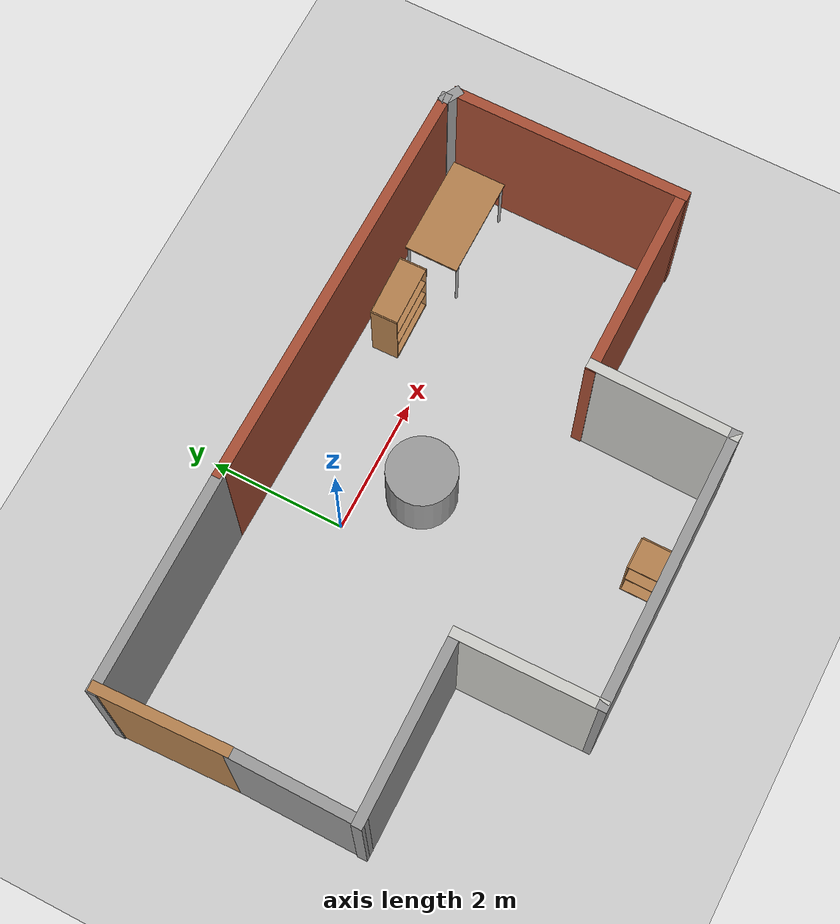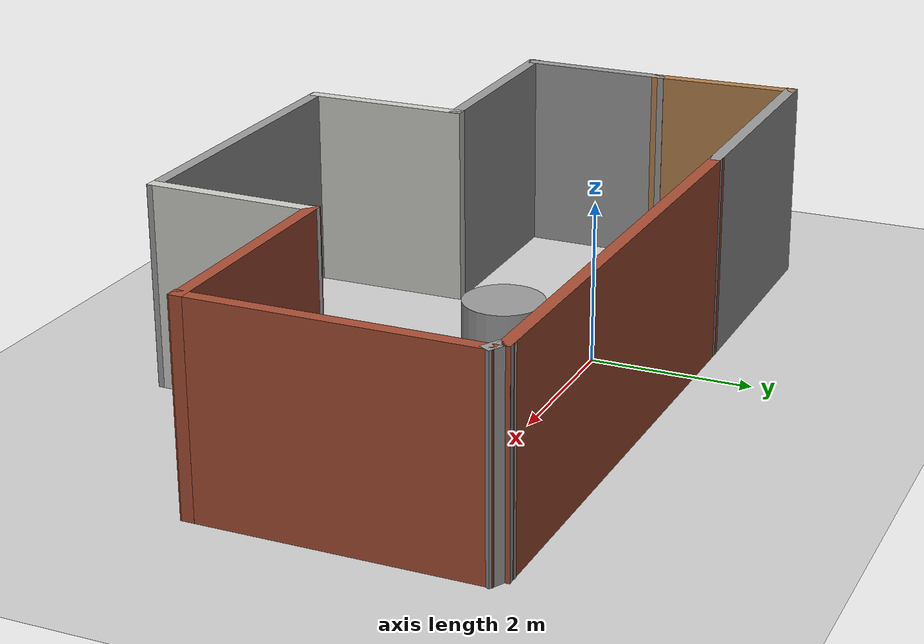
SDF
<sdf version="1.7">
 <world name="default">
  <light name="sun" type="directional">
   <pose>0 0 10 0 -0 0</pose>
   <diffuse>0.8 0.8 0.8 1</diffuse>
   <specular>0.2 0.2 0.2 1</specular>
   <attenuation>
    <range>1000</range>
    <constant>0.9</constant>
    <linear>0.01</linear>
    <quadratic>0.001</quadratic>
   </attenuation>
   <direction>-0.5 0.1 -0.9</direction>
   <spot><inner_angle>0</inner_angle><outer_angle>0</outer_angle><falloff>0</falloff></spot>
  </light>
  <model name="ground_plane">
   <static>1</static>
   <link name="link">
    <collision name="collision">
     <geometry><plane><normal>0 0 1</normal><size>100 100</size></plane></geometry>
     <surface><friction><ode><mu>100</mu><mu2>50</mu2></ode></friction></surface>
    </collision>
    <visual name="visual">
     <cast_shadows>0</cast_shadows>
     <geometry><plane><normal>0 0 1</normal><size>100 100</size></plane></geometry>
     <material>
      <script><uri>file://media/materials/scripts/gazebo.material</uri><name>Gazebo/Grey</name></script>
     </material>
    </visual>
   </link>
  </model>
  <gravity>0 0 -9.8</gravity>
  <magnetic_field>6e-06 2.3e-05 -4.2e-05</magnetic_field>
  <atmosphere type="adiabatic"/>
  <physics type="ode">
   <max_step_size>0.001</max_step_size>
   <real_time_factor>1</real_time_factor>
   <real_time_update_rate>1000</real_time_update_rate>
  </physics>
  <scene><ambient>0.4 0.4 0.4 1</ambient><background>0.7 0.7 0.7 1</background><shadows>1</shadows></scene>
  <audio><device>default</device></audio>
  <spherical_coordinates>
   <surface_model>EARTH_WGS84</surface_model>
   <latitude_deg>0</latitude_deg>
   <longitude_deg>0</longitude_deg>
   <elevation>0</elevation>
   <heading_deg>0</heading_deg>
  </spherical_coordinates>
  <model name="warehouse">
   <pose>0.832713 -1.54674 0 0 -0 0</pose>
   <link name="Wall_0">
    <collision name="Wall_0_Collision">
     <geometry><box><size>2.69779 0.15 2.5</size></box></geometry>
     <pose>0 0 1.25 0 -0 0</pose>
    </collision>
    <visual name="Wall_0_Visual">
     <pose>0 0 1.25 0 -0 0</pose>
     <geometry><box><size>2.69779 0.15 2.5</size></box></geometry>
     <material>
      <script><uri>file://media/materials/scripts/gazebo.material</uri><name>Gazebo/Grey</name></script>
      <ambient>0 0 0 1</ambient>
     </material>
     <meta><layer>0</layer></meta>
    </visual>
    <pose>-3.34665 -0.808766 0 0 -0 0.00776</pose>
   </link>
   <link name="Wall_11">
    <collision name="Wall_11_Collision">
     <geometry><box><size>4.04089 0.15 2.5</size></box></geometry>
     <pose>0 0 1.25 0 -0 0</pose>
    </collision>
    <visual name="Wall_11_Visual">
     <pose>0 0 1.25 0 -0 0</pose>
     <geometry><box><size>4.04089 0.15 2.5</size></box></geometry>
     <material>
      <script><uri>file://media/materials/scripts/gazebo.material</uri><name>Gazebo/Grey</name></script>
      <ambient>0 0 0 1</ambient>
     </material>
     <meta><layer>0</layer></meta>
    </visual>
    <pose>-0.09695 -2.76772 0 0 -0 0.003909</pose>
   </link>
   <link name="Wall_12">
    <collision name="Wall_12_Collision">
     <geometry><box><size>2.15738 0.15 2.5</size></box></geometry>
     <pose>0 0 1.25 0 -0 0</pose>
    </collision>
    <visual name="Wall_12_Visual">
     <pose>0 0 1.25 0 -0 0</pose>
     <geometry><box><size>2.15738 0.15 2.5</size></box></geometry>
     <material>
      <script><uri>file://media/materials/scripts/gazebo.material</uri><name>Gazebo/CeilingTiled</name></script>
      <ambient>0 0 0 1</ambient>
     </material>
     <meta><layer>0</layer></meta>
    </visual>
    <pose>1.87129 -1.75668 0 0 -0 1.54807</pose>
   </link>
   <link name="Wall_14">
    <collision name="Wall_14_Collision">
     <geometry><box><size>2.91101 0.15 2.5</size></box></geometry>
     <pose>0 0 1.25 0 -0 0</pose>
    </collision>
    <visual name="Wall_14_Visual">
     <pose>0 0 1.25 0 -0 0</pose>
     <geometry><box><size>2.91101 0.15 2.5</size></box></geometry>
     <material>
      <script><uri>file://media/materials/scripts/gazebo.material</uri><name>Gazebo/Bricks</name></script>
      <ambient>0 0 0 1</ambient>
     </material>
     <meta><layer>0</layer></meta>
    </visual>
    <pose>3.25921 -0.753254 0 0 -0 0</pose>
   </link>
   <link name="Wall_16">
    <collision name="Wall_16_Collision">
     <geometry><box><size>3.5 0.15 2.5</size></box></geometry>
     <pose>0 0 1.25 0 -0 0</pose>
    </collision>
    <visual name="Wall_16_Visual">
     <pose>0 0 1.25 0 -0 0</pose>
     <geometry><box><size>3.5 0.15 2.5</size></box></geometry>
     <material>
      <script><uri>file://media/materials/scripts/gazebo.material</uri><name>Gazebo/Bricks</name></script>
      <ambient>0 0 0 1</ambient>
     </material>
     <meta><layer>0</layer></meta>
    </visual>
    <pose>4.63953 0.906538 0 0 -0 1.5708</pose>
   </link>
   <link name="Wall_18">
    <collision name="Wall_18_Collision">
     <geometry><box><size>6.21052 0.15 2.5</size></box></geometry>
     <pose>0 0 1.25 0 -0 0</pose>
    </collision>
    <visual name="Wall_18_Visual">
     <pose>0 0 1.25 0 -0 0</pose>
     <geometry><box><size>6.21052 0.15 2.5</size></box></geometry>
     <material>
      <script><uri>file://media/materials/scripts/gazebo.material</uri><name>Gazebo/Bricks</name></script>
      <ambient>0 0 0 1</ambient>
     </material>
     <meta><layer>0</layer></meta>
    </visual>
    <pose>1.46389 2.73666 0 0 -0 -0.012548</pose>
   </link>
   <link name="Wall_2">
    <collision name="Wall_2_Collision">
     <geometry><box><size>1.98059 0.15 2.5</size></box></geometry>
     <pose>0 0 1.25 0 -0 0</pose>
    </collision>
    <visual name="Wall_2_Visual">
     <pose>0 0 1.25 0 -0 0</pose>
     <geometry><box><size>1.98059 0.15 2.5</size></box></geometry>
     <material>
      <script><uri>file://media/materials/scripts/gazebo.material</uri><name>Gazebo/Grey</name></script>
      <ambient>0 0 0 1</ambient>
     </material>
     <meta><layer>0</layer></meta>
    </visual>
    <pose>-4.5977 0.096359 0 0 -0 1.56249</pose>
   </link>
   <link name="Wall_20">
    <collision name="Wall_20_Collision">
     <geometry><box><size>0.15 0.15 2.5</size></box></geometry>
     <pose>0 0 1.25 0 -0 0</pose>
    </collision>
    <visual name="Wall_20_Visual">
     <pose>0 0 1.25 0 -0 0</pose>
     <geometry><box><size>0.15 0.15 2.5</size></box></geometry>
     <material>
      <script><uri>file://media/materials/scripts/gazebo.material</uri><name>Gazebo/Grey</name></script>
      <ambient>1 1 1 1</ambient>
     </material>
     <meta><layer>0</layer></meta>
    </visual>
    <pose>4.4939 2.69863 0 0 -0 0</pose>
   </link>
   <link name="Wall_21">
    <collision name="Wall_21_Collision">
     <geometry><box><size>0.332706 0.15 2.5</size></box></geometry>
     <pose>0 0 1.25 0 -0 0</pose>
    </collision>
    <visual name="Wall_21_Visual">
     <pose>0 0 1.25 0 -0 0</pose>
     <geometry><box><size>0.332706 0.15 2.5</size></box></geometry>
     <material>
      <script><uri>file://media/materials/scripts/gazebo.material</uri><name>Gazebo/Grey</name></script>
      <ambient>0 0 0 1</ambient>
     </material>
     <meta><layer>0</layer></meta>
    </visual>
    <pose>4.55911 2.64009 0 0 -0 -0.49431</pose>
   </link>
   <link name="Wall_4">
    <collision name="Wall_4_Collision">
     <geometry><box><size>1.91436 0.15 2.5</size></box></geometry>
     <pose>0 0 1.25 0 -0 0</pose>
    </collision>
    <visual name="Wall_4_Visual">
     <pose>0 0 1.25 0 -0 0</pose>
     <geometry><box><size>1.91436 0.15 2.5</size></box></geometry>
     <material>
      <script><uri>file://media/materials/scripts/gazebo.material</uri><name>Gazebo/Wood</name></script>
      <ambient>0 0 0 1</ambient>
     </material>
     <meta><layer>0</layer></meta>
    </visual>
    <pose>-4.62051 1.87782 0 0 -0 1.60528</pose>
   </link>
   <link name="Wall_5">
    <collision name="Wall_5_Collision">
     <geometry><box><size>3.25 0.15 2.5</size></box></geometry>
     <pose>0 0 1.25 0 -0 0</pose>
    </collision>
    <visual name="Wall_5_Visual">
     <pose>0 0 1.25 0 -0 0</pose>
     <geometry><box><size>3.25 0.15 2.5</size></box></geometry>
     <material>
      <script><uri>file://media/materials/scripts/gazebo.material</uri><name>Gazebo/Grey</name></script>
      <ambient>0 0 0 1</ambient>
     </material>
     <meta><layer>0</layer></meta>
    </visual>
    <pose>-3.11613 2.77468 0 0 -0 0</pose>
   </link>
   <link name="Wall_7">
    <collision name="Wall_7_Collision">
     <geometry><box><size>2.11176 0.15 2.5</size></box></geometry>
     <pose>0 0 1.25 0 -0 0</pose>
    </collision>
    <visual name="Wall_7_Visual">
     <pose>0 0 1.25 0 -0 0</pose>
     <geometry><box><size>2.11176 0.15 2.5</size></box></geometry>
     <material>
      <script><uri>file://media/materials/scripts/gazebo.material</uri><name>Gazebo/CeilingTiled</name></script>
      <ambient>0 0 0 1</ambient>
     </material>
     <meta><layer>0</layer></meta>
    </visual>
    <pose>-2.04998 -1.7795 0 0 -0 -1.56304</pose>
   </link>
   <static>1</static>
  </model>
  <model name="table">
   <static>1</static>
   <link name="link">
    <collision name="surface">
     <pose>0 0 1 0 -0 0</pose>
     <geometry><box><size>1.5 0.8 0.03</size></box></geometry>
     <surface><friction><ode><mu>0.6</mu><mu2>0.6</mu2></ode></friction></surface>
    </collision>
    <visual name="visual1">
     <pose>0 0 1 0 -0 0</pose>
     <geometry><box><size>1.5 0.8 0.03</size></box></geometry>
     <material>
      <script><uri>file://media/materials/scripts/gazebo.material</uri><name>Gazebo/Wood</name></script>
     </material>
    </visual>
    <collision name="front_left_leg">
     <pose>0.68 0.38 0.5 0 -0 0</pose>
     <geometry><cylinder><radius>0.02</radius><length>1</length></cylinder></geometry>
    </collision>
    <visual name="front_left_leg">
     <pose>0.68 0.38 0.5 0 -0 0</pose>
     <geometry><cylinder><radius>0.02</radius><length>1</length></cylinder></geometry>
     <material>
      <script><uri>file://media/materials/scripts/gazebo.material</uri><name>Gazebo/Grey</name></script>
     </material>
    </visual>
    <collision name="front_right_leg">
     <pose>0.68 -0.38 0.5 0 -0 0</pose>
     <geometry><cylinder><radius>0.02</radius><length>1</length></cylinder></geometry>
    </collision>
    <visual name="front_right_leg">
     <pose>0.68 -0.38 0.5 0 -0 0</pose>
     <geometry><cylinder><radius>0.02</radius><length>1</length></cylinder></geometry>
     <material>
      <script><uri>file://media/materials/scripts/gazebo.material</uri><name>Gazebo/Grey</name></script>
     </material>
    </visual>
    <collision name="back_right_leg">
     <pose>-0.68 -0.38 0.5 0 -0 0</pose>
     <geometry><cylinder><radius>0.02</radius><length>1</length></cylinder></geometry>
    </collision>
    <visual name="back_right_leg">
     <pose>-0.68 -0.38 0.5 0 -0 0</pose>
     <geometry><cylinder><radius>0.02</radius><length>1</length></cylinder></geometry>
     <material>
      <script><uri>file://media/materials/scripts/gazebo.material</uri><name>Gazebo/Grey</name></script>
     </material>
    </visual>
    <collision name="back_left_leg">
     <pose>-0.68 0.38 0.5 0 -0 0</pose>
     <geometry><cylinder><radius>0.02</radius><length>1</length></cylinder></geometry>
    </collision>
    <visual name="back_left_leg">
     <pose>-0.68 0.38 0.5 0 -0 0</pose>
     <geometry><cylinder><radius>0.02</radius><length>1</length></cylinder></geometry>
     <material>
      <script><uri>file://media/materials/scripts/gazebo.material</uri><name>Gazebo/Grey</name></script>
     </material>
    </visual>
   </link>
   <pose>4.49702 0.549812 0 0 -0 0</pose>
  </model>
  <model name="unit_cylinder">
   <pose>0.922535 -0.768564 0.5 0 -0 0</pose>
   <link name="link">
    <inertial>
     <mass>1</mass>
     <inertia><ixx>0.145833</ixx><ixy>0</ixy><ixz>0</ixz><iyy>0.145833</iyy><iyz>0</iyz><izz>0.125</izz></inertia>
    </inertial>
    <collision name="collision">
     <geometry><cylinder><radius>0.5</radius><length>1</length></cylinder></geometry>
    </collision>
    <visual name="visual">
     <geometry><cylinder><radius>0.5</radius><length>1</length></cylinder></geometry>
     <material>
      <script><name>Gazebo/Grey</name><uri>file://media/materials/scripts/gazebo.material</uri></script>
     </material>
    </visual>
   </link>
  </model>
  <model name="bookshelf">
   <static>1</static>
   <link name="link">
    <inertial><mass>1</mass></inertial>
    <collision name="back">
     <pose>0 0.005 0.6 0 -0 0</pose>
     <geometry><box><size>0.9 0.01 1.2</size></box></geometry>
    </collision>
    <visual name="visual1">
     <pose>0 0.005 0.6 0 -0 0</pose>
     <geometry><box><size>0.9 0.01 1.2</size></box></geometry>
     <material>
      <script><uri>file://media/materials/scripts/gazebo.material</uri><name>Gazebo/Wood</name></script>
     </material>
    </visual>
    <collision name="left_side">
     <pose>0.45 -0.195 0.6 0 -0 0</pose>
     <geometry><box><size>0.02 0.4 1.2</size></box></geometry>
    </collision>
    <visual name="visual2">
     <pose>0.45 -0.195 0.6 0 -0 0</pose>
     <geometry><box><size>0.02 0.4 1.2</size></box></geometry>
     <material>
      <script><uri>file://media/materials/scripts/gazebo.material</uri><name>Gazebo/Wood</name></script>
     </material>
    </visual>
    <collision name="right_side">
     <pose>-0.45 -0.195 0.6 0 -0 0</pose>
     <geometry><box><size>0.02 0.4 1.2</size></box></geometry>
    </collision>
    <visual name="visual3">
     <pose>-0.45 -0.195 0.6 0 -0 0</pose>
     <geometry><box><size>0.02 0.4 1.2</size></box></geometry>
     <material>
      <script><uri>file://media/materials/scripts/gazebo.material</uri><name>Gazebo/Wood</name></script>
     </material>
    </visual>
    <collision name="bottom">
     <pose>0 -0.195 0.03 0 -0 0</pose>
     <geometry><box><size>0.88 0.4 0.06</size></box></geometry>
    </collision>
    <visual name="visual4">
     <pose>0 -0.195 0.03 0 -0 0</pose>
     <geometry><box><size>0.88 0.4 0.06</size></box></geometry>
     <material>
      <script><uri>file://media/materials/scripts/gazebo.material</uri><name>Gazebo/Wood</name></script>
     </material>
    </visual>
    <collision name="top">
     <pose>0 -0.195 1.19 0 -0 0</pose>
     <geometry><box><size>0.88 0.4 0.02</size></box></geometry>
    </collision>
    <visual name="visual5">
     <pose>0 -0.195 1.19 0 -0 0</pose>
     <geometry><box><size>0.88 0.4 0.02</size></box></geometry>
     <material>
      <script><uri>file://media/materials/scripts/gazebo.material</uri><name>Gazebo/Wood</name></script>
     </material>
    </visual>
    <collision name="low_shelf">
     <pose>0 -0.195 0.43 0 -0 0</pose>
     <geometry><box><size>0.88 0.4 0.02</size></box></geometry>
    </collision>
    <visual name="visual6">
     <pose>0 -0.195 0.43 0 -0 0</pose>
     <geometry><box><size>0.88 0.4 0.02</size></box></geometry>
     <material>
      <script><uri>file://media/materials/scripts/gazebo.material</uri><name>Gazebo/Wood</name></script>
     </material>
    </visual>
    <collision name="high_shelf">
     <pose>0 -0.195 0.8 0 -0 0</pose>
     <geometry><box><size>0.88 0.4 0.02</size></box></geometry>
    </collision>
    <visual name="visual7">
     <pose>0 -0.195 0.8 0 -0 0</pose>
     <geometry><box><size>0.88 0.4 0.02</size></box></geometry>
     <material>
      <script><uri>file://media/materials/scripts/gazebo.material</uri><name>Gazebo/Wood</name></script>
     </material>
    </visual>
   </link>
   <pose>3.03697 0.879032 -0 0 -0 0.017678</pose>
  </model>
  <model name="cabinet">
   <static>1</static>
   <link name="cabinet_bottom_plate">
    <inertial>
     <pose>0 0 -1 0 -0 0</pose>
     <inertia><ixx>2.05</ixx><ixy>0</ixy><ixz>0</ixz><iyy>2.05</iyy><iyz>0</iyz><izz>2.05</izz></inertia>
     <mass>25</mass>
    </inertial>
    <collision name="cabinet_bottom_plate_geom">
     <pose>0 0 0.01 0 -0 0</pose>
     <geometry><box><size>0.45 0.45 0.02</size></box></geometry>
    </collision>
    <visual name="cabinet_bottom_plate_geom_visual">
     <pose>0 0 0.01 0 -0 0</pose>
     <geometry><box><size>0.45 0.45 0.02</size></box></geometry>
     <material>
      <script><uri>file://media/materials/scripts/gazebo.material</uri><name>Gazebo/Wood</name></script>
     </material>
    </visual>
    <collision name="cabinet_bottom_plate_geom_cabinet_back_plate">
     <pose>0.235 0 0.51 0 -0 0</pose>
     <geometry><box><size>0.02 0.45 1.02</size></box></geometry>
    </collision>
    <visual name="cabinet_bottom_plate_geom_cabinet_back_plate_visual">
     <pose>0.235 0 0.51 0 -0 0</pose>
     <geometry><box><size>0.02 0.45 1.02</size></box></geometry>
     <material>
      <script><uri>file://media/materials/scripts/gazebo.material</uri><name>Gazebo/Wood</name></script>
     </material>
    </visual>
    <collision name="cabinet_bottom_plate_geom_cabinet_left_plate">
     <pose>0 0.235 0.51 0 -0 0</pose>
     <geometry><box><size>0.45 0.02 1.02</size></box></geometry>
    </collision>
    <visual name="cabinet_bottom_plate_geom_cabinet_left_plate_visual">
     <pose>0 0.235 0.51 0 -0 0</pose>
     <geometry><box><size>0.45 0.02 1.02</size></box></geometry>
     <material>
      <script><uri>file://media/materials/scripts/gazebo.material</uri><name>Gazebo/Wood</name></script>
     </material>
    </visual>
    <collision name="cabinet_bottom_plate_geom_cabinet_middle_plate">
     <pose>0 0 0.51 0 -0 0</pose>
     <geometry><box><size>0.45 0.45 0.02</size></box></geometry>
    </collision>
    <visual name="cabinet_bottom_plate_geom_cabinet_middle_plate_visual">
     <pose>0 0 0.51 0 -0 0</pose>
     <geometry><box><size>0.45 0.45 0.02</size></box></geometry>
     <material>
      <script><uri>file://media/materials/scripts/gazebo.material</uri><name>Gazebo/Wood</name></script>
     </material>
    </visual>
    <collision name="cabinet_bottom_plate_geom_cabinet_right_plate">
     <pose>0 -0.235 0.51 0 -0 0</pose>
     <geometry><box><size>0.45 0.02 1.02</size></box></geometry>
    </collision>
    <visual name="cabinet_bottom_plate_geom_cabinet_right_plate_visual">
     <pose>0 -0.235 0.51 0 -0 0</pose>
     <geometry><box><size>0.45 0.02 1.02</size></box></geometry>
     <material>
      <script><uri>file://media/materials/scripts/gazebo.material</uri><name>Gazebo/Wood</name></script>
     </material>
    </visual>
    <collision name="cabinet_bottom_plate_geom_cabinet_top_plate">
     <pose>0 0 1.01 0 -0 0</pose>
     <geometry><box><size>0.45 0.45 0.02</size></box></geometry>
    </collision>
    <visual name="cabinet_bottom_plate_geom_cabinet_top_plate_visual">
     <pose>0 0 1.01 0 -0 0</pose>
     <geometry><box><size>0.45 0.45 0.02</size></box></geometry>
     <material>
      <script><uri>file://media/materials/scripts/gazebo.material</uri><name>Gazebo/Wood</name></script>
     </material>
    </visual>
   </link>
   <pose>1.18147 -4.01654 0 0 -0 0</pose>
  </model>
 </world>
</sdf>
